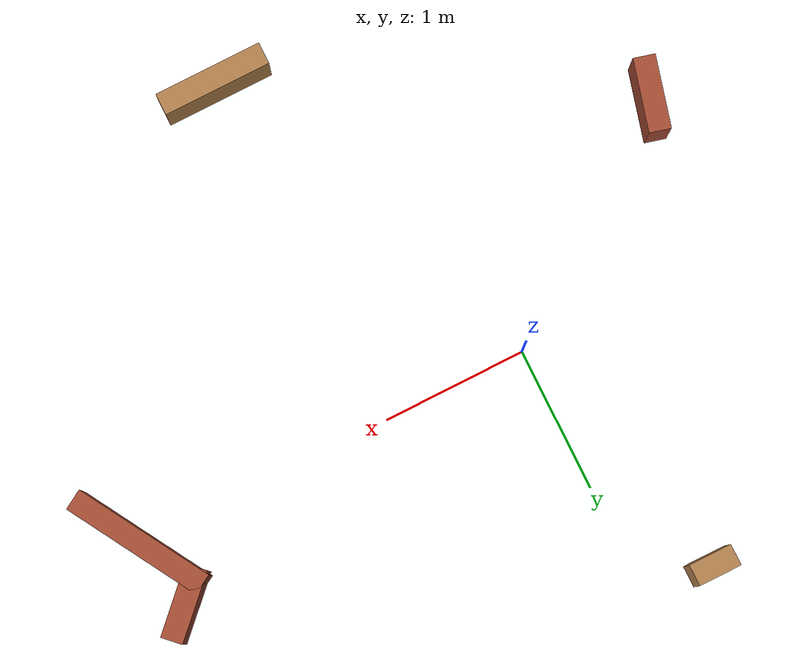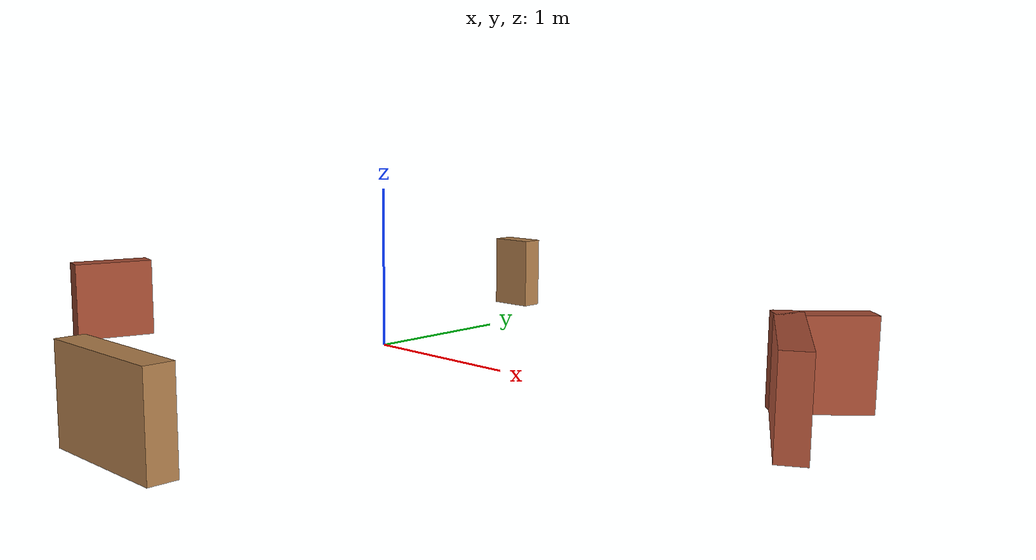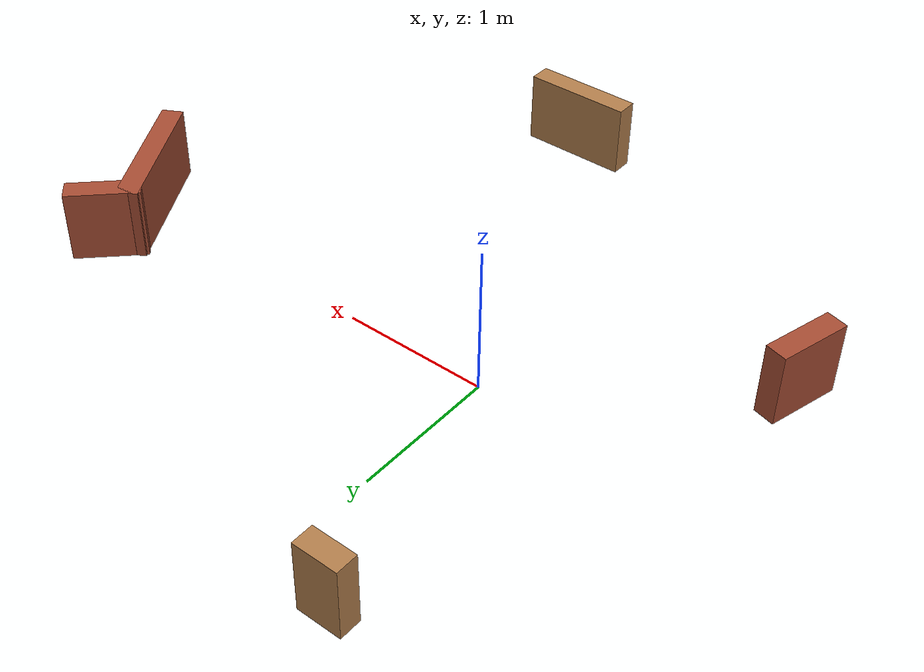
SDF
<?xml version='1.0'?>
<sdf version='1.7'>
  <model name='NewMap'>
    <pose>0.740839 -0.3305 0 0 -0 0</pose>
    <link name='Wall_11'>
      <collision name='Wall_11_Collision'>
        <geometry>
          <box>
            <size>0.3 0.15 0.5</size>
          </box>
        </geometry>
        <pose>0 0 0.25 0 -0 0</pose>
      </collision>
      <visual name='Wall_11_Visual'>
        <pose>0 0 0.25 0 -0 0</pose>
        <geometry>
          <box>
            <size>0.3 0.15 0.5</size>
          </box>
        </geometry>
        <material>
          <script>
            <uri>file://media/materials/scripts/gazebo.material</uri>
            <name>Gazebo/Wood</name>
          </script>
          <ambient>1 1 1 1</ambient>
        </material>
        <meta>
          <layer>0</layer>
        </meta>
      </visual>
      <pose>-1.19884 2.1425 0 0 -0 3.14159</pose>
    </link>
    <link name='Wall_3'>
      <collision name='Wall_3_Collision'>
        <geometry>
          <box>
            <size>1 0.15 0.5</size>
          </box>
        </geometry>
        <pose>0 0 0.25 0 -0 0</pose>
      </collision>
      <visual name='Wall_3_Visual'>
        <pose>0 0 0.25 0 -0 0</pose>
        <geometry>
          <box>
            <size>1 0.15 0.5</size>
          </box>
        </geometry>
        <material>
          <script>
            <uri>file://media/materials/scripts/gazebo.material</uri>
            <name>Gazebo/Bricks</name>
          </script>
          <ambient>1 1 1 1</ambient>
        </material>
        <meta>
          <layer>0</layer>
        </meta>
      </visual>
      <pose>2.05466 0.3305 0 0 -0 2.09447</pose>
    </link>
    <link name='Wall_4'>
      <collision name='Wall_4_Collision'>
        <geometry>
          <box>
            <size>0.5 0.15 0.5</size>
          </box>
        </geometry>
        <pose>0 0 0.25 0 -0 0</pose>
      </collision>
      <visual name='Wall_4_Visual'>
        <pose>0 0 0.25 0 -0 0</pose>
        <geometry>
          <box>
            <size>0.5 0.15 0.5</size>
          </box>
        </geometry>
        <material>
          <script>
            <uri>file://media/materials/scripts/gazebo.material</uri>
            <name>Gazebo/Bricks</name>
          </script>
          <ambient>1 1 1 1</ambient>
        </material>
        <meta>
          <layer>0</layer>
        </meta>
      </visual>
      <pose>1.96616 0.822 0 0 -0 0.783378</pose>
    </link>
    <link name='Wall_6'>
      <collision name='Wall_6_Collision'>
        <geometry>
          <box>
            <size>0.75 0.15 0.5</size>
          </box>
        </geometry>
        <pose>0 0 0.25 0 -0 0</pose>
      </collision>
      <visual name='Wall_6_Visual'>
        <pose>0 0 0.25 0 -0 0</pose>
        <geometry>
          <box>
            <size>0.75 0.15 0.5</size>
          </box>
        </geometry>
        <material>
          <script>
            <uri>file://media/materials/scripts/gazebo.material</uri>
            <name>Gazebo/Wood</name>
          </script>
          <ambient>1 1 1 1</ambient>
        </material>
        <meta>
          <layer>0</layer>
        </meta>
      </visual>
      <pose>0.278161 -2.1425 0 0 -0 0</pose>
    </link>
    <link name='Wall_8'>
      <collision name='Wall_8_Collision'>
        <geometry>
          <box>
            <size>0.5 0.15 0.5</size>
          </box>
        </geometry>
        <pose>0 0 0.25 0 -0 0</pose>
      </collision>
      <visual name='Wall_8_Visual'>
        <pose>0 0 0.25 0 -0 0</pose>
        <geometry>
          <box>
            <size>0.5 0.15 0.5</size>
          </box>
        </geometry>
        <material>
          <script>
            <uri>file://media/materials/scripts/gazebo.material</uri>
            <name>Gazebo/Bricks</name>
          </script>
          <ambient>1 1 1 1</ambient>
        </material>
        <meta>
          <layer>0</layer>
        </meta>
      </visual>
      <pose>-2.23284 -0.7665 0 0 -0 1.31056</pose>
    </link>
    <static>1</static>
  </model>
</sdf>
